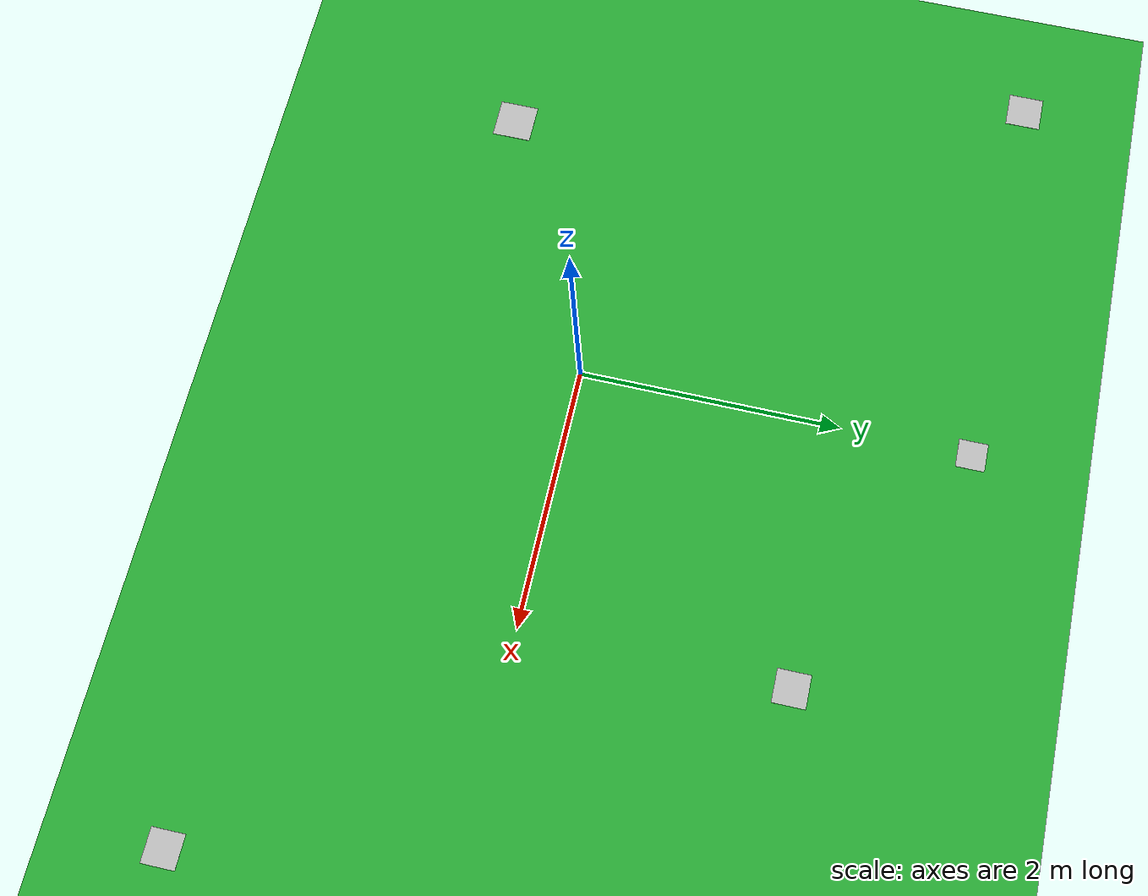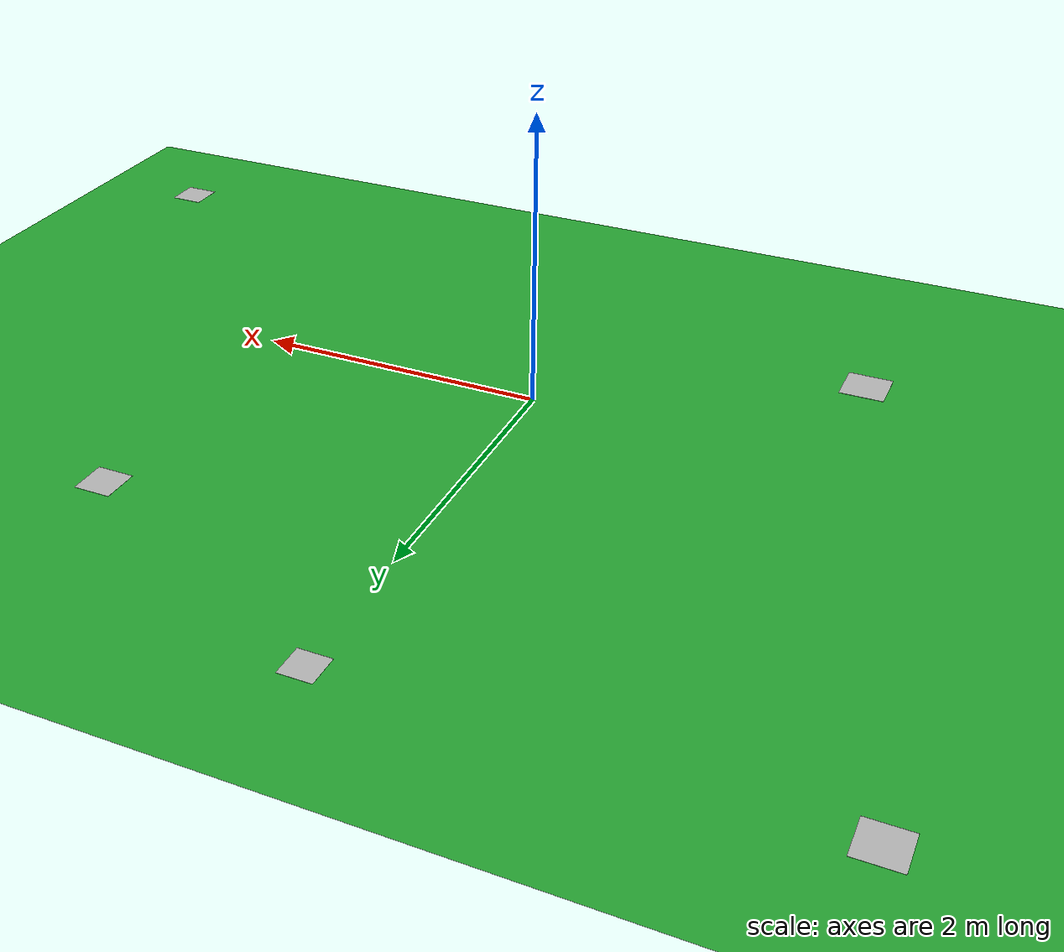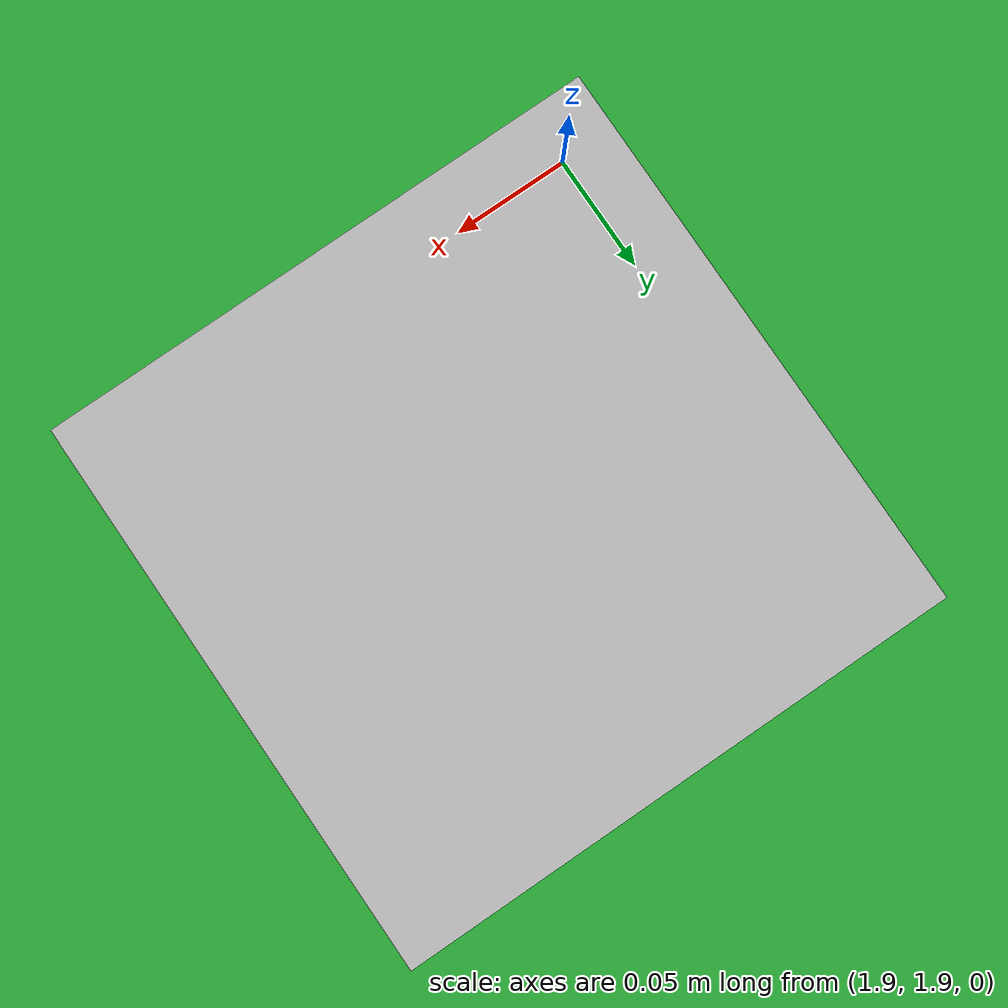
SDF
<sdf version='1.7'>
  <world name='custom_world'>
    <light name='custom_sun' type='directional'>
      <cast_shadows>1</cast_shadows>
      <pose>0 0 12 0 -0 0</pose>
      <diffuse>0.7 0.6 0.9 1</diffuse>
      <specular>0.2 0.3 0.3 1</specular>
      <attenuation>
        <range>1500</range>
        <constant>0.8</constant>
        <linear>0.015</linear>
        <quadratic>0.002</quadratic>
      </attenuation>
      <direction>-0.4 0.2 -0.8</direction>
    </light>
    <model name='custom_ground_plane'>
      <static>1</static>
      <link name='custom_link'>
        <collision name='custom_collision'>
          <geometry>
            <plane>
              <normal>0 0 1</normal>
              <size>150 150</size>
            </plane>
          </geometry>
          <surface>
            <friction>
              <ode>
                <mu>50</mu>
                <mu2>25</mu2>
              </ode>
            </friction>
          </surface>
        </collision>
        <visual name='custom_visual'>
          <geometry>
            <plane>
              <normal>0 0 1</normal>
              <size>150 150</size>
            </plane>
          </geometry>
          <material>
            <script>
              <uri>file://media/materials/scripts/gazebo.material</uri>
              <name>Gazebo/Green</name>
            </script>
          </material>
        </visual>
      </link>
    </model>
    <scene>
      <ambient>0.5 0.5 0.5 1</ambient>
      <background>0.6 0.7 0.9 1</background>
    </scene>
    <spherical_coordinates>
      <surface_model>EARTH_WGS84</surface_model>
      <latitude_deg>0</latitude_deg>
      <longitude_deg>0</longitude_deg>
      <elevation>0</elevation>
      <heading_deg>0</heading_deg>
    </spherical_coordinates>

    <!-- Marker 101 -->
    <model name='marker101_box'>
      <link name='marker'>
        <inertial>
          <mass>0.1</mass>
        </inertial>
        <pose>0 0 0 0 0 0</pose>
        <visual name='marker_visual'>
          <geometry>
            <box>
              <size>0.25 0.25 0.001</size>
            </box>
          </geometry>
          <material>
            <script>
              <uri>model://marker101/material/scripts</uri>
              <uri>model://marker101/material/textures</uri>
              <name>Aruco/marker101</name>
            </script>
          </material>
        </visual>
        <collision name='marker_collision'>
          <geometry>
            <box>
              <size>0.25 0.25 0.02</size>
            </box>
          </geometry>
        </collision>
      </link>
      <pose>2 2 0 0 0 0</pose>
    </model>

    <!-- Marker 102 -->
    <model name='marker102_box'>
      <link name='marker'>
        <inertial>
          <mass>0.15</mass>
        </inertial>
        <pose>0 0 0 0 0 0</pose>
        <visual name='marker_visual'>
          <geometry>
            <box>
              <size>0.3 0.3 0.002</size>
            </box>
          </geometry>
          <material>
            <script>
              <uri>model://marker102/material/scripts</uri>
              <uri>model://marker102/material/textures</uri>
              <name>Aruco/marker102</name>
            </script>
          </material>
        </visual>
        <collision name='marker_collision'>
          <geometry>
            <box>
              <size>0.3 0.3 0.025</size>
            </box>
          </geometry>
        </collision>
      </link>
      <pose>-2 -1 0.05 0 0 0</pose>
    </model>

    <!-- Marker 103 -->
    <model name='marker103_box'>
      <link name='marker'>
        <inertial>
          <mass>0.12</mass>
        </inertial>
        <pose>0 0 0 0 0 0</pose>
        <visual name='marker_visual'>
          <geometry>
            <box>
              <size>0.22 0.22 0.001</size>
            </box>
          </geometry>
          <material>
            <script>
              <uri>model://marker103/material/scripts</uri>
              <uri>model://marker103/material/textures</uri>
              <name>Aruco/marker103</name>
            </script>
          </material>
        </visual>
        <collision name='marker_collision'>
          <geometry>
            <box>
              <size>0.22 0.22 0.02</size>
            </box>
          </geometry>
        </collision>
      </link>
      <pose>0 3 0 0 0 0</pose>
    </model>

    <!-- Marker 104 -->
    <model name='marker104_box'>
      <link name='marker'>
        <inertial>
          <mass>0.1</mass>
        </inertial>
        <pose>0 0 0 0 0 0</pose>
        <visual name='marker_visual'>
          <geometry>
            <box>
              <size>0.25 0.25 0.001</size>
            </box>
          </geometry>
          <material>
            <script>
              <uri>model://marker104/material/scripts</uri>
              <uri>model://marker104/material/textures</uri>
              <name>Aruco/marker104</name>
            </script>
          </material>
        </visual>
        <collision name='marker_collision'>
          <geometry>
            <box>
              <size>0.25 0.25 0.02</size>
            </box>
          </geometry>
        </collision>
      </link>
      <pose>4 -2 0 0 0 0</pose>
    </model>

    <!-- Marker 105 -->
    <model name='marker105_box'>
      <link name='marker'>
        <inertial>
          <mass>0.1</mass>
        </inertial>
        <pose>0 0 0 0 0 0</pose>
        <visual name='marker_visual'>
          <geometry>
            <box>
              <size>0.27 0.27 0.001</size>
            </box>
          </geometry>
          <material>
            <script>
              <uri>model://marker105/material/scripts</uri>
              <uri>model://marker105/material/textures</uri>
              <name>Aruco/marker105</name>
            </script>
          </material>
        </visual>
        <collision name='marker_collision'>
          <geometry>
            <box>
              <size>0.27 0.27 0.02</size>
            </box>
          </geometry>
        </collision>
      </link>
      <pose>-3 3 0 0 0 0</pose>
    </model>
  </world>
</sdf>
